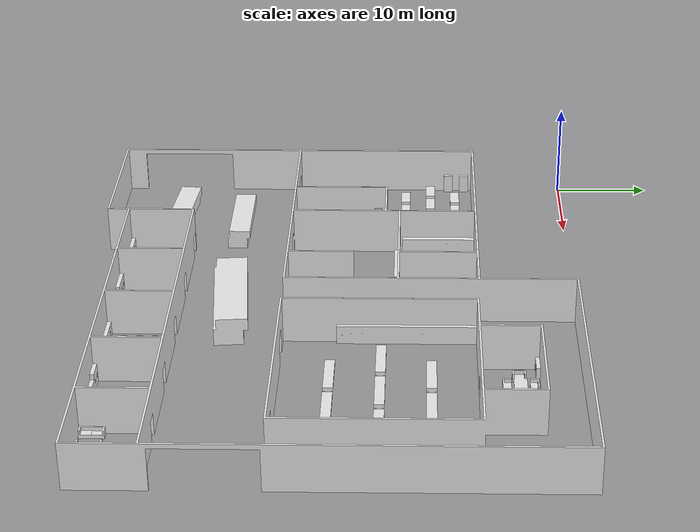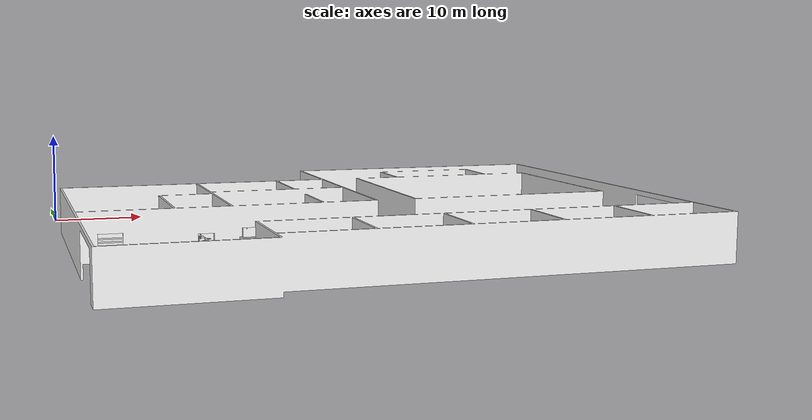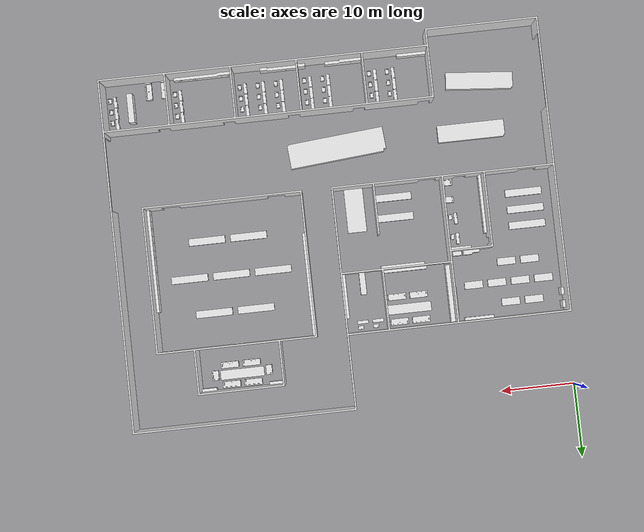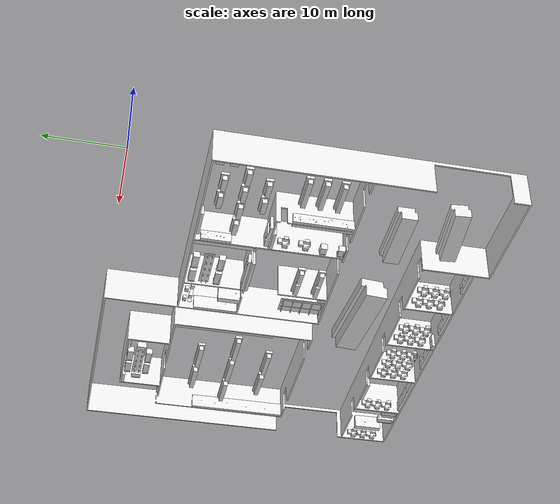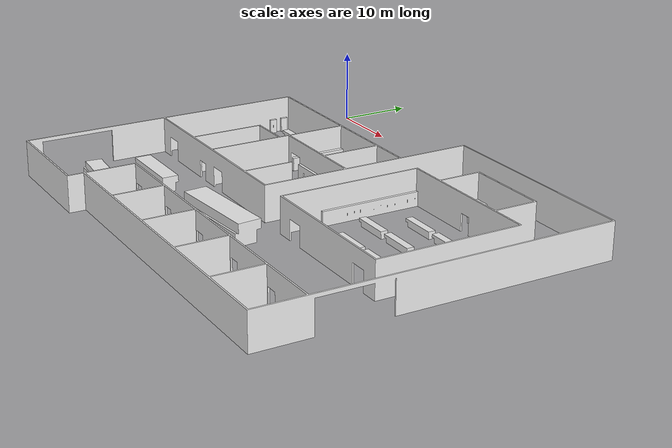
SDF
<sdf version='1.4'>
<!-- # BASICALLY a copy of model.sdf. BUT FOR sdf version 1.4. ITS NOT USING THIS ONE -->
    <model name='my2ndmodel'>
      <static>1</static>
      <link name='Environment'>>
      <collision name='Obstacles'>
          <pose>0 0 0 0 0 0</pose>
          <geometry>
           <mesh>
            <uri>model://my2ndmodel/meshes/Obstacles.dae</uri>
            <scale>1.0 1.0 1.0</scale>
           </mesh>
          </geometry>
          <max_contacts>10</max_contacts>
          <surface>
            <bounce/>
            <friction>
              <ode/>
            </friction>
            <contact>
              <ode/>
            </contact>
          </surface>
        </collision>
<!--visual: -->
        <visual name='Obstacles'>
          <pose>0 0 0 0 0 0</pose>
          <geometry>
           <mesh>
            <uri>model://my2ndmodel/meshes/Obstacles.dae</uri>
            <scale>1.0 1.0 1.0</scale>
           </mesh>
          </geometry>
          <material>
            <script>
              <uri>file://media/materials/scripts/gazebo.material</uri>
              <name>Gazebo/White</name>
            </script>
          </material>
        </visual>

        <collision name='Walls'>
          <pose>0 0 0 0 0 0</pose>
          <geometry>
           <mesh>
            <uri>model://my2ndmodel/meshes/Walls.dae</uri>
            <scale>1.0 1.0 1.0</scale>
           </mesh>
          </geometry>
          <max_contacts>10</max_contacts>
          <surface>
            <bounce/>
            <friction>
              <ode/>
            </friction>
            <contact>
              <ode/>
            </contact>
          </surface>
        </collision>

        <visual name='Walls'>
          <pose>0 0 0 0 0 0</pose>
          <geometry>
           <mesh>
            <uri>model://my2ndmodel/meshes/Walls.dae</uri>
            <scale>1.0 1.0 1.0</scale>
           </mesh>
          </geometry>
          <material>
            <script>
              <uri>file://media/materials/scripts/gazebo.material</uri>
              <name>Gazebo/White</name>
            </script>
          </material>
        </visual>

    </link>
  </model>
</sdf>
